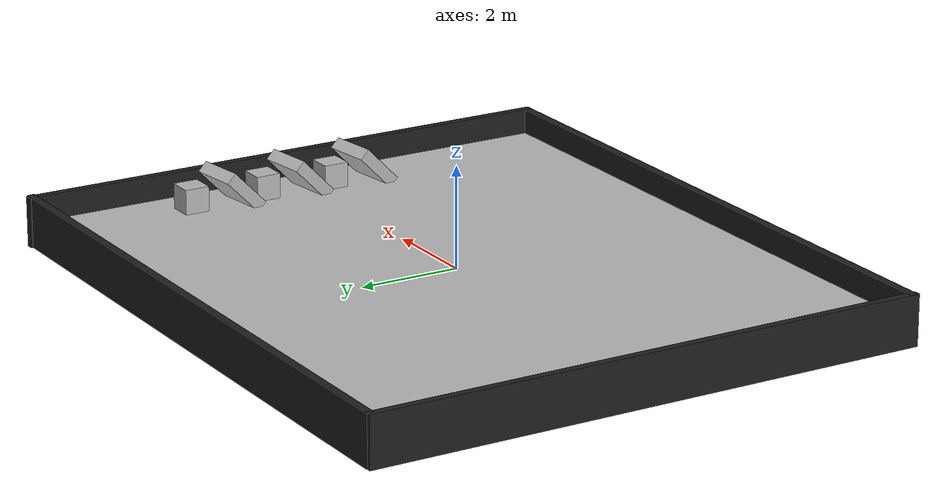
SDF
<sdf version="1.4">
  <world name="default">
    <scene>
      <ambient>0.8 0.8 0.8 1</ambient>
      <background>0.7 0.7 0.7 1</background>
      <shadows>true</shadows>
    </scene>

    <!-- A global light source -->
    <include>
      <uri>model://sun</uri>
      <pose> -2.0 2.0 2.0 0 0 0</pose>
    </include>

  <!-- Piso da sala  -->
    <include>
      <uri>model://zig-zag/pisosala</uri>
      <pose> 0 0 0 0 0 -1.57</pose>
    </include>

  <!-- Parede da sala  -->
    <include>
      <uri>model://zig-zag/parede</uri>
      <pose> 0 0 0 0 0 0</pose>
    </include>

 <!-- horse -->
    <include>
      <uri>model://zig-zag/objeto/horse</uri>
      <pose> 5.51 -0.41 0.251305 0 0 0</pose>
    </include>

 <!-- cow -->
    <include>
      <uri>model://zig-zag/objeto/cow</uri>
      <pose> 5.57 2.62 0.251305 0 0 0</pose>
    </include>

<!-- dog -->
    <include>
      <uri>model://zig-zag/objeto/dog</uri>
      <pose> 5.52 1.09 0.27 0 0 0</pose>
    </include>

 <!--  creeper_61 -->
    <include>
      <uri>model://zig-zag/creepers/creeper_61</uri>
      <pose> 5.50 1.85 0.25 0 0.79 -1.45</pose>
    </include>

 <!--  creeper_41 -->
    <include>
      <uri>model://zig-zag/creepers/creeper_41</uri>
      <pose> 5.50 0.35 0.25 0 0.79 -1.45</pose>
    </include>

 <!--  creeper_21 -->
    <include>
      <uri>model://zig-zag/creepers/creeper_21</uri>
      <pose> 5.50 -1.09 0.25 0 0.79 -1.45</pose>
    </include>

    <physics type="ode">
      <real_time_update_rate>1000.0</real_time_update_rate>
      <max_step_size>0.001</max_step_size>
      <real_time_factor>1</real_time_factor>
      <ode>
        <solver>
          <type>quick</type>
          <iters>150</iters>
          <precon_iters>0</precon_iters>
          <sor>1.400000</sor>
          <use_dynamic_moi_rescaling>1</use_dynamic_moi_rescaling>
        </solver>
        <constraints>
          <cfm>0.00001</cfm>
          <erp>0.2</erp>
          <contact_max_correcting_vel>2000.000000</contact_max_correcting_vel>
          <contact_surface_layer>0.01000</contact_surface_layer>
        </constraints>
      </ode>
    </physics>

    <gui fullscreen='0'>
      <camera name='user_camera'>
        <pose frame=''>0.238775 -6.8831 10.8485 -0 0.979642 1.5602</pose>
        <view_controller>orbit</view_controller>
        <projection_type>perspective</projection_type>
      </camera>
    </gui>

  </world>

</sdf>

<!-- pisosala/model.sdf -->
<sdf version="1.6">
  <model name="pisosala_forca">
    <static>true</static>
    <link name="course_link">
      <collision name="course_collision">
        <geometry>
          <plane>
            <normal>0 0 1</normal>
            <size>10 13</size>
          </plane>
        </geometry>
        <surface>
          <friction>
            <ode>
              <mu>100</mu>
              <mu2>50</mu2>
            </ode>
          </friction>
        </surface>
      </collision>
      <visual name="course_visual">
        <cast_shadows>false</cast_shadows>
        <geometry>
          <mesh>
            <uri>model://forca/pisosala/materials/scripts/piso.dae</uri>
            <scale>1 1 1</scale>
          </mesh>
        </geometry>
      </visual>
    </link>
  </model>
</sdf>

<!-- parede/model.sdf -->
<sdf version='1.6'>
  <model name='parede'>
    <link name='Wall_0'>
      <pose frame=''>-0.004951 -5.56026 0 0 -0 0</pose>
      <self_collide>0</self_collide>
      <enable_wind>0</enable_wind>
      <kinematic>0</kinematic>
      <inertial>
        <inertia>
          <ixx>0</ixx>
          <ixy>0</ixy>
          <ixz>0</ixz>
          <iyy>0</iyy>
          <iyz>0</iyz>
          <izz>0</izz>
        </inertia>
        <mass>0</mass>
        <pose frame=''>0 0 0 0 -0 0</pose>
      </inertial>
      <gravity>1</gravity>
      <visual name='Wall_0_Visual'>
        <pose frame=''>0 0 0 0 -0 0</pose>
        <geometry>
          <box>
            <size>13.1161 0.15 1.0</size>
          </box>
        </geometry>
        <material>
          <script>
            <uri>file://media/materials/scripts/gazebo.material</uri>
            <name>Gazebo/Black</name>
          </script>
          <ambient>0 0 0 1</ambient>
          <shader type='vertex'>
            <normal_map>__default__</normal_map>
          </shader>
          <diffuse>0 0 0 1</diffuse>
          <specular>0 0 0 1</specular>
          <emissive>0 0 0 1</emissive>
        </material>
        <meta>
          <layer>0</layer>
        </meta>
        <transparency>0</transparency>
        <cast_shadows>1</cast_shadows>
      </visual>
      <collision name='Wall_0_Collision'>
        <laser_retro>0</laser_retro>
        <max_contacts>10</max_contacts>
        <pose frame=''>0 0 0 0 -0 0</pose>
        <geometry>
          <box>
            <size>13.1161 0.15 1.0</size>
          </box>
        </geometry>
        <surface>
          <friction>
            <ode>
              <mu>1</mu>
              <mu2>1</mu2>
              <fdir1>0 0 0</fdir1>
              <slip1>0</slip1>
              <slip2>0</slip2>
            </ode>
            <torsional>
              <coefficient>1</coefficient>
              <patch_radius>0</patch_radius>
              <surface_radius>0</surface_radius>
              <use_patch_radius>1</use_patch_radius>
              <ode>
                <slip>0</slip>
              </ode>
            </torsional>
          </friction>
          <bounce>
            <restitution_coefficient>0</restitution_coefficient>
            <threshold>1e+06</threshold>
          </bounce>
          <contact>
            <collide_without_contact>0</collide_without_contact>
            <collide_without_contact_bitmask>1</collide_without_contact_bitmask>
            <collide_bitmask>1</collide_bitmask>
            <ode>
              <soft_cfm>0</soft_cfm>
              <soft_erp>0.2</soft_erp>
              <kp>1e+13</kp>
              <kd>1</kd>
              <max_vel>0.01</max_vel>
              <min_depth>0</min_depth>
            </ode>
            <bullet>
              <split_impulse>1</split_impulse>
              <split_impulse_penetration_threshold>-0.01</split_impulse_penetration_threshold>
              <soft_cfm>0</soft_cfm>
              <soft_erp>0.2</soft_erp>
              <kp>1e+13</kp>
              <kd>1</kd>
            </bullet>
          </contact>
        </surface>
      </collision>
    </link>
    <link name='Wall_1'>
      <pose frame=''>0.061052 5.53717 0 0 -0 3.14</pose>
      <self_collide>0</self_collide>
      <enable_wind>0</enable_wind>
      <kinematic>0</kinematic>
      <inertial>
        <inertia>
          <ixx>0</ixx>
          <ixy>0</ixy>
          <ixz>0</ixz>
          <iyy>0</iyy>
          <iyz>0</iyz>
          <izz>0</izz>
        </inertia>
        <mass>0</mass>
        <pose frame=''>0 0 0 0 -0 0</pose>
      </inertial>
      <gravity>1</gravity>
      <visual name='Wall_1_Visual'>
        <pose frame=''>0 0 0 0 -0 0</pose>
        <geometry>
          <box>
            <size>13.1161 0.15 1.0</size>
          </box>
        </geometry>
        <material>
          <script>
            <uri>file://media/materials/scripts/gazebo.material</uri>
            <name>Gazebo/Black</name>
          </script>
          <ambient>0 0 0 1</ambient>
          <shader type='vertex'>
            <normal_map>__default__</normal_map>
          </shader>
          <diffuse>0 0 0 1</diffuse>
          <specular>0 0 0 1</specular>
          <emissive>0 0 0 1</emissive>
        </material>
        <meta>
          <layer>0</layer>
        </meta>
        <transparency>0</transparency>
        <cast_shadows>1</cast_shadows>
      </visual>
      <collision name='Wall_1_Collision'>
        <laser_retro>0</laser_retro>
        <max_contacts>10</max_contacts>
        <pose frame=''>0 0 0 0 -0 0</pose>
        <geometry>
          <box>
            <size>13.1161 0.15 1.0</size>
          </box>
        </geometry>
        <surface>
          <friction>
            <ode>
              <mu>1</mu>
              <mu2>1</mu2>
              <fdir1>0 0 0</fdir1>
              <slip1>0</slip1>
              <slip2>0</slip2>
            </ode>
            <torsional>
              <coefficient>1</coefficient>
              <patch_radius>0</patch_radius>
              <surface_radius>0</surface_radius>
              <use_patch_radius>1</use_patch_radius>
              <ode>
                <slip>0</slip>
              </ode>
            </torsional>
          </friction>
          <bounce>
            <restitution_coefficient>0</restitution_coefficient>
            <threshold>1e+06</threshold>
          </bounce>
          <contact>
            <collide_without_contact>0</collide_without_contact>
            <collide_without_contact_bitmask>1</collide_without_contact_bitmask>
            <collide_bitmask>1</collide_bitmask>
            <ode>
              <soft_cfm>0</soft_cfm>
              <soft_erp>0.2</soft_erp>
              <kp>1e+13</kp>
              <kd>1</kd>
              <max_vel>0.01</max_vel>
              <min_depth>0</min_depth>
            </ode>
            <bullet>
              <split_impulse>1</split_impulse>
              <split_impulse_penetration_threshold>-0.01</split_impulse_penetration_threshold>
              <soft_cfm>0</soft_cfm>
              <soft_erp>0.2</soft_erp>
              <kp>1e+13</kp>
              <kd>1</kd>
            </bullet>
          </contact>
        </surface>
      </collision>
    </link>
    <link name='Wall_2'>
      <pose frame=''>6.5 0.005899 0 0 -0 1.57</pose>
      <self_collide>0</self_collide>
      <enable_wind>0</enable_wind>
      <kinematic>0</kinematic>
      <inertial>
        <inertia>
          <ixx>0</ixx>
          <ixy>0</ixy>
          <ixz>0</ixz>
          <iyy>0</iyy>
          <iyz>0</iyz>
          <izz>0</izz>
        </inertia>
        <mass>0</mass>
        <pose frame=''>0 0 0 0 -0 0</pose>
      </inertial>
      <gravity>1</gravity>
      <visual name='Wall_2_Visual'>
        <pose frame=''>0 0 0 0 -0 0</pose>
        <geometry>
          <box>
            <size>11.2703 0.15 1.0</size>
          </box>
        </geometry>
        <material>
          <script>
            <uri>file://media/materials/scripts/gazebo.material</uri>
            <name>Gazebo/Black</name>
          </script>
          <ambient>0 0 0 1</ambient>
          <shader type='vertex'>
            <normal_map>__default__</normal_map>
          </shader>
          <diffuse>0 0 0 1</diffuse>
          <specular>0 0 0 1</specular>
          <emissive>0 0 0 1</emissive>
        </material>
        <meta>
          <layer>0</layer>
        </meta>
        <transparency>0</transparency>
        <cast_shadows>1</cast_shadows>
      </visual>
      <collision name='Wall_2_Collision'>
        <laser_retro>0</laser_retro>
        <max_contacts>10</max_contacts>
        <pose frame=''>0 0 0 0 -0 0</pose>
        <geometry>
          <box>
            <size>11.2703 0.15 1.0</size>
          </box>
        </geometry>
        <surface>
          <friction>
            <ode>
              <mu>1</mu>
              <mu2>1</mu2>
              <fdir1>0 0 0</fdir1>
              <slip1>0</slip1>
              <slip2>0</slip2>
            </ode>
            <torsional>
              <coefficient>1</coefficient>
              <patch_radius>0</patch_radius>
              <surface_radius>0</surface_radius>
              <use_patch_radius>1</use_patch_radius>
              <ode>
                <slip>0</slip>
              </ode>
            </torsional>
          </friction>
          <bounce>
            <restitution_coefficient>0</restitution_coefficient>
            <threshold>1e+06</threshold>
          </bounce>
          <contact>
            <collide_without_contact>0</collide_without_contact>
            <collide_without_contact_bitmask>1</collide_without_contact_bitmask>
            <collide_bitmask>1</collide_bitmask>
            <ode>
              <soft_cfm>0</soft_cfm>
              <soft_erp>0.2</soft_erp>
              <kp>1e+13</kp>
              <kd>1</kd>
              <max_vel>0.01</max_vel>
              <min_depth>0</min_depth>
            </ode>
            <bullet>
              <split_impulse>1</split_impulse>
              <split_impulse_penetration_threshold>-0.01</split_impulse_penetration_threshold>
              <soft_cfm>0</soft_cfm>
              <soft_erp>0.2</soft_erp>
              <kp>1e+13</kp>
              <kd>1</kd>
            </bullet>
          </contact>
        </surface>
      </collision>
    </link>
    <link name='Wall_3'>
      <pose frame=''>-6.49998 -0.025026 0 0 0 -1.57</pose>
      <self_collide>0</self_collide>
      <enable_wind>0</enable_wind>
      <kinematic>0</kinematic>
      <inertial>
        <inertia>
          <ixx>0</ixx>
          <ixy>0</ixy>
          <ixz>0</ixz>
          <iyy>0</iyy>
          <iyz>0</iyz>
          <izz>0</izz>
        </inertia>
        <mass>0</mass>
        <pose frame=''>0 0 0 0 -0 0</pose>
      </inertial>
      <gravity>1</gravity>
      <visual name='Wall_3_Visual'>
        <pose frame=''>0 0 0 0 -0 0</pose>
        <geometry>
          <box>
            <size>11.2703 0.15 1.0</size>
          </box>
        </geometry>
        <material>
          <script>
            <uri>file://media/materials/scripts/gazebo.material</uri>
            <name>Gazebo/Black</name>
          </script>
          <ambient>0 0 0 1</ambient>
          <shader type='vertex'>
            <normal_map>__default__</normal_map>
          </shader>
          <diffuse>0 0 0 1</diffuse>
          <specular>0 0 0 1</specular>
          <emissive>0 0 0 1</emissive>
        </material>
        <meta>
          <layer>0</layer>
        </meta>
        <transparency>0</transparency>
        <cast_shadows>1</cast_shadows>
      </visual>
      <collision name='Wall_3_Collision'>
        <laser_retro>0</laser_retro>
        <max_contacts>10</max_contacts>
        <pose frame=''>0 0 0 0 -0 0</pose>
        <geometry>
          <box>
            <size>11.2703 0.15 1.0</size>
          </box>
        </geometry>
        <surface>
          <friction>
            <ode>
              <mu>1</mu>
              <mu2>1</mu2>
              <fdir1>0 0 0</fdir1>
              <slip1>0</slip1>
              <slip2>0</slip2>
            </ode>
            <torsional>
              <coefficient>1</coefficient>
              <patch_radius>0</patch_radius>
              <surface_radius>0</surface_radius>
              <use_patch_radius>1</use_patch_radius>
              <ode>
                <slip>0</slip>
              </ode>
            </torsional>
          </friction>
          <bounce>
            <restitution_coefficient>0</restitution_coefficient>
            <threshold>1e+06</threshold>
          </bounce>
          <contact>
            <collide_without_contact>0</collide_without_contact>
            <collide_without_contact_bitmask>1</collide_without_contact_bitmask>
            <collide_bitmask>1</collide_bitmask>
            <ode>
              <soft_cfm>0</soft_cfm>
              <soft_erp>0.2</soft_erp>
              <kp>1e+13</kp>
              <kd>1</kd>
              <max_vel>0.01</max_vel>
              <min_depth>0</min_depth>
            </ode>
            <bullet>
              <split_impulse>1</split_impulse>
              <split_impulse_penetration_threshold>-0.01</split_impulse_penetration_threshold>
              <soft_cfm>0</soft_cfm>
              <soft_erp>0.2</soft_erp>
              <kp>1e+13</kp>
              <kd>1</kd>
            </bullet>
          </contact>
        </surface>
      </collision>
    </link>
    <static>1</static>
    <allow_auto_disable>1</allow_auto_disable>
  </model>
</sdf>

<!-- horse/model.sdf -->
<sdf version="1.6">
  <model name="horse">
    <static>true</static>
    <link name="box">
      <pose>0 0 0 0 0 0</pose>
      <collision name="collision">
        <geometry>
          <box>
            <size>0.5 0.5 0.5</size>
          </box>
        </geometry>
      </collision>
      <visual name="visual">
        <geometry>
          <box>
            <size>0.5 0.5 0.5</size>
          </box>
        </geometry>
        <material>
          <script>
            <uri>model://zig-zag/objeto/horse/materials/scripts</uri>
            <uri>model://zig-zag/objeto/horse/materials/textures</uri>
            <name>horse</name>
          </script>
        </material>
      </visual>
    </link>
  </model>
</sdf>

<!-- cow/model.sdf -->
<sdf version="1.6">
  <model name="cow">
    <static>true</static>
    <link name="box">
      <pose>0 0 0 0 0 0</pose>
      <collision name="collision">
        <geometry>
          <box>
            <size>0.5 0.5 0.5</size>
          </box>
        </geometry>
      </collision>
      <visual name="visual">
        <geometry>
          <box>
            <size>0.5 0.5 0.5</size>
          </box>
        </geometry>
        <material>
          <script>
            <uri>model://zig-zag/objeto/cow/materials/scripts</uri>
            <uri>model://zig-zag/objeto/cow/materials/textures</uri>
            <name>cow</name>
          </script>
        </material>
      </visual>
    </link>
  </model>
</sdf>

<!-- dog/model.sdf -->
<sdf version="1.6">
  <model name="dog">
    <static>true</static>
    <link name="box">
      <pose>0 0 0 0 0 0</pose>
      <collision name="collision">
        <geometry>
          <box>
            <size>0.5 0.5 0.5</size>
          </box>
        </geometry>
      </collision>
      <visual name="visual">
        <geometry>
          <box>
            <size>0.5 0.5 0.5</size>
          </box>
        </geometry>
        <material>
          <script>
            <uri>model://zig-zag/objeto/dog/materials/scripts</uri>
            <uri>model://zig-zag/objeto/dog/materials/textures</uri>
            <name>dog</name>
          </script>
        </material>
      </visual>
    </link>
  </model>
</sdf>

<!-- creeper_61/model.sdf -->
<sdf version="1.6">
  <model name="creeper_61">
    <static>true</static>
    <link name="box">
      <pose>0 0 0 0 0 0</pose>
      <collision name="collision">
        <geometry>
          <mesh>
            <uri>model://zig-zag/creepers/creeper_61/materials/textures/caixa.dae</uri>
            <scale>1 1 1</scale>
          </mesh>
        </geometry>
      </collision>
      <visual name='visual'>
        <pose frame=''>0 0 0 0 0 0</pose>
        <geometry>
          <mesh>
            <uri>model://zig-zag/creepers/creeper_61/materials/textures/caixa.dae</uri>
            <scale>1 1 1</scale>
          </mesh>
        </geometry>
        <transparency>0</transparency>
        <cast_shadows>1</cast_shadows>
      </visual>
    </link>
  </model>
</sdf>

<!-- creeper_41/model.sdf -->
<sdf version="1.6">
  <model name="creeper_41">
    <static>true</static>
    <link name="box">
      <pose>0 0 0 0 0 0</pose>
      <collision name="collision">
        <geometry>
          <mesh>
            <uri>model://zig-zag/creepers/creeper_41/materials/textures/caixa.dae</uri>
            <scale>1 1 1</scale>
          </mesh>
        </geometry>
      </collision>
      <visual name='visual'>
        <pose frame=''>0 0 0 0 0 0</pose>
        <geometry>
          <mesh>
            <uri>model://zig-zag/creepers/creeper_41/materials/textures/caixa.dae</uri>
            <scale>1 1 1</scale>
          </mesh>
        </geometry>
        <transparency>0</transparency>
        <cast_shadows>1</cast_shadows>
      </visual>
    </link>
  </model>
</sdf>

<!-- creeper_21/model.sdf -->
<sdf version="1.6">
  <model name="creeper_21">
    <static>true</static>
    <link name="box">
      <pose>0 0 0 0 0 0</pose>
      <collision name="collision">
        <geometry>
          <mesh>
            <uri>model://zig-zag/creepers/creeper_21/materials/textures/caixa.dae</uri>
            <scale>1 1 1</scale>
          </mesh>
        </geometry>
      </collision>
      <visual name='visual'>
        <pose frame=''>0 0 0 0 0 0</pose>
        <geometry>
          <mesh>
            <uri>model://zig-zag/creepers/creeper_21/materials/textures/caixa.dae</uri>
            <scale>1 1 1</scale>
          </mesh>
        </geometry>
        <transparency>0</transparency>
        <cast_shadows>1</cast_shadows>
      </visual>
    </link>
  </model>
</sdf>
